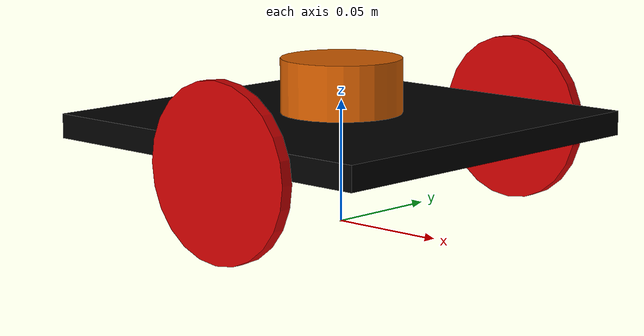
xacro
<?xml version="1.0"?>
<robot xmlns:xacro="http://www.ros.org/wiki/xacro" name="rover">

  <xacro:property name="base_width" value="0.16"/>
  <xacro:property name="base_len" value="0.16"/>
  <xacro:property name="wheel_radius" value="0.035"/>
  <xacro:property name="base_wheel_gap" value="0.007"/>
  <xacro:property name="wheel_separation" value="0.15"/>
  <xacro:property name="wheel_joint_offset" value="0.02"/>

  <xacro:property name="caster_wheel_radius" value="${wheel_radius/2}"/>
  <xacro:property name="caster_wheel_mass" value="0.001"/>
  <xacro:property name="caster_wheel_joint_offset" value="-0.052"/>

  <!--Color Properties-->
  <material name="blue">
    <color rgba="0 0 0.8 1"/>
  </material>
  <material name="black">
    <color rgba="0 0 0 1"/>
  </material>
  <material name="white">
    <color rgba="1 1 1 1"/>
  </material>
  <material name="red">
    <color rgba="0.8 0.0 0.0 1.0"/>
  </material>

  <!--Interial macros-->
  <xacro:macro name="cylinder_inertia" params="m r h">
    <inertial>
      <mass value="${m}"/>
      <inertia ixx="${m*(3*r*r+h*h)/12}" ixy = "0" ixz = "0" iyy="${m*(3*r*r+h*h)/12}" iyz = "0" izz="${m*r*r/2}"/>
    </inertial>
  </xacro:macro>

  <xacro:macro name="box_inertia" params="m w h d">
    <inertial>
      <mass value="${m}"/>
      <inertia ixx="${m / 12.0 * (d*d + h*h)}" ixy="0.0" ixz="0.0" iyy="${m / 12.0 * (w*w + h*h)}" iyz="0.0" izz="${m / 12.0 * (w*w + d*d)}"/>
    </inertial>
  </xacro:macro>

  <xacro:macro name="sphere_inertia" params="m r">
    <inertial>
      <mass value="${m}"/>
      <inertia ixx="${2.0*m*(r*r)/5.0}" ixy="0.0" ixz="0.0" iyy="${2.0*m*(r*r)/5.0}" iyz="0.0" izz="${2.0*m*(r*r)/5.0}"/>
    </inertial>
  </xacro:macro>

  <!--Base Footprint-->
  <link name="base_footprint">
    <xacro:box_inertia m="10" w="0.001" h="0.001" d="0.001"/>
    <visual>
        <origin xyz="0 0 0" rpy="0 0 0" />
        <geometry>
            <box size="0.001 0.001 0.001" />
        </geometry>
    </visual>
  </link>

  <!--Base link-->
  <link name="base_link">
    <xacro:box_inertia m="10" w="${base_len}" h="${base_width}" d="0.01"/>
    <visual>
      <geometry>
        <box size="${base_len} ${base_width} 0.01"/>
      </geometry>
      <material name="black"/>
    </visual>
    <collision>
      <geometry>
        <box size="${base_len} ${base_width} 0.01"/>
      </geometry>
    </collision>
  </link>

  <!--base_link to base_footprint Joint-->
  <joint name="base_link_joint" type="fixed">
    <origin xyz="0 0 ${wheel_radius + 0.005}" rpy="0 0 0" />
    <parent link="base_footprint"/>
    <child link="base_link" />
  </joint>

  <!--Wheel link & joint macro-->
  <xacro:macro name="wheel" params="prefix reflect">
    <link name="${prefix}_wheel">
      <visual>
        <origin xyz="0 0 0" rpy="${pi/2} 0 0"/>
        <geometry>
          <cylinder radius="${wheel_radius}" length="0.005"/>
        </geometry>
        <material name="red"/>
      </visual>
      <collision>
        <origin xyz="0 0 0" rpy="${pi/2} 0 0"/>
        <geometry>
          <cylinder radius="${wheel_radius}" length="0.005"/>
        </geometry>
      </collision>
      <xacro:cylinder_inertia m="10" r="${wheel_radius}" h="0.005"/>
    </link>

    <joint name="${prefix}_wheel_joint" type="continuous">
      <axis xyz="0 1 0" rpy="0 0 0" />
      <parent link="base_link"/>
      <child link="${prefix}_wheel"/>
      <origin xyz="${wheel_joint_offset} ${((base_width/2)+base_wheel_gap)*reflect} -0.005" rpy="0 0 0"/>
    </joint>
  </xacro:macro>

  <!--Create Left & Right Wheel links/joints-->
  <xacro:wheel prefix="left" reflect="1"/>
  <xacro:wheel prefix="right" reflect="-1"/>

  <!--Caster Wheel Link-->
  <link name="caster_wheel">
    <visual>
      <origin xyz="0 0 0" rpy="0 0 0"/>
      <geometry>
        <sphere radius="${caster_wheel_radius}"/>
      </geometry>
      <material name="blue"/>
    </visual>
    <collision>
      <origin xyz="0 0 0" rpy="0 0 0"/>
      <geometry>
        <sphere radius="${caster_wheel_radius}"/>
      </geometry>
    </collision>
    <xacro:sphere_inertia m="10" r="${caster_wheel_radius}"/>
  </link>

  <!--Caster Wheel Joint-->
  <joint name="caster_wheel_joint" type="continuous">
    <axis xyz="0 1 0" rpy="0 0 0" />
    <parent link="base_link"/>
    <child link="caster_wheel"/>
    <origin xyz="${caster_wheel_joint_offset} 0 -${caster_wheel_radius+0.005}" rpy="0 0 0"/>
  </joint>

<!-- laser -->
<link name="laser">
  <xacro:cylinder_inertia m="5" r="0.025" h="0.025"/>

  <visual>
    <geometry>
      <cylinder radius="0.025" length="0.025"/>
     </geometry>
  </visual>

  <collision>
    <origin/>
    <geometry>
      <cylinder radius="0.025" length="0.025"/>
    </geometry>
  </collision>
</link>

<joint name="laser_joint" type="fixed">
  <origin xyz="0 0.0 0.015" rpy="0.0 0.0 3.14"/>
  <axis xyz="0 0 1" />
  <parent link="base_link"/>
  <child link="laser"/>
</joint>

<gazebo reference="laser">
  <sensor type="ray" name="laser">
      <pose>0 0 0 0 0 0</pose>
      <visualize>false</visualize>
      <update_rate>40</update_rate>
      <ray>
          <scan>
              <horizontal>
                  <samples>1440</samples>
                  <resolution>0.5</resolution>
                  <min_angle>-1.578</min_angle>
                  <max_angle>1.578</max_angle>
              </horizontal>
          </scan>
          <range>
            <min>0.10</min>
            <max>3.0</max>
            <resolution>0.01</resolution>
          </range>
          <noise>
            <type>gaussian</type>
            <mean>0.0</mean>
            <stddev>0.01</stddev>
          </noise>
      </ray>
      <plugin name="laser_controller" filename="libgazebo_ros_laser.so">

          <topicName>/scan</topicName>
          <frameName>laser</frameName>
      </plugin>
  </sensor>
</gazebo>
  <xacro:include filename="$(find pde4430_ex2)/urdf/rover_gazebo_plugins.xacro"/>

</robot>
